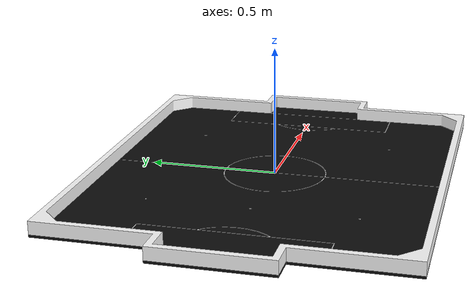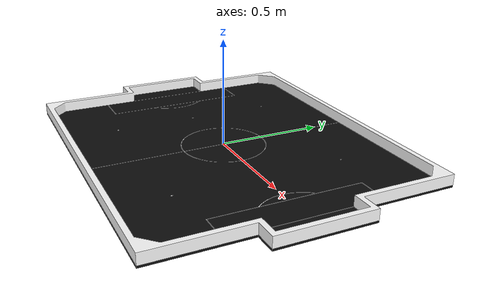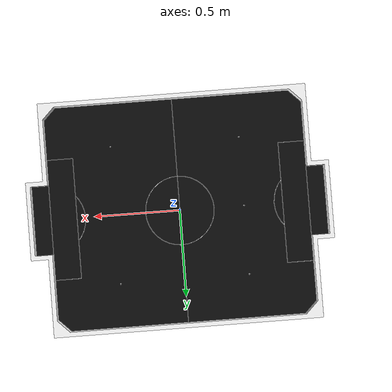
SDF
<?xml version="1.0" ?>

<!-- To generate a sdf file from urdf, run the command
    gz sdf -p /model.urdf > /model.sdf -->

<!-- Physical parameters (contact properties) taken from
https://bitbucket.org/osrf/gazebo/src/gazebo11/models/ground_plane/model.sdf -->

<sdf version="1.5">
  <model name='vss_field'>

    <static>true</static>

    <link name='base_link'>
      <pose frame=''>0 0 0 0 0 0</pose>

      <inertial>
        <pose frame=''>0 0 0.01 0 0 0</pose>
        <mass>4.8995</mass>
        <inertia>
          <ixx>0.541513</ixx>
          <ixy>5.91216e-07</ixy>
          <ixz>-5.64316e-09</ixz>
          <iyy>0.271333</iyy>
          <iyz>1.16883e-08</iyz>
          <izz>0.81109</izz>
        </inertia>
      </inertial>

      <collision name='base_link_collision'>
        <pose>0 0 -0.005 0 0 0</pose>
        <geometry>
          <box>
            <size>1.75 1.35 0.01</size>
          </box>
        </geometry>
        <surface>
          <friction>
            <ode>
              <mu>0.6</mu>
              <mu2>0.6</mu2>
            </ode>
            <torsional>
              <ode/>
            </torsional>
          </friction>
          <bounce/>
        </surface>
        <max_contacts>20</max_contacts>
      </collision>
      <collision name='laterais_link_collision'>
        <pose frame=''>0 0 0 0 0 0</pose>
        <geometry>
          <mesh>
            <scale>1 1 1</scale>
            <uri>model://vss_field/meshes/laterais_link.stl</uri>
          </mesh>
        </geometry>
      </collision>

      <visual name='base_link_visual'>
        <pose frame=''>0 0 0 0 0 0</pose>
        <geometry>
          <mesh>
            <scale>1 1 1</scale>
            <uri>model://vss_field/meshes/base_link.stl</uri>
          </mesh>
        </geometry>
        <material>
          <ambient>.05 .05 .05 1</ambient>
          <diffuse>.05 .05 .05 1</diffuse>
          <specular>.1 .1 .1 1</specular>
        </material>
      </visual>

      <visual name='marcas_campo_visual'>
        <pose frame=''>0 0 0.0001 0 0 0</pose>
        <geometry>
          <mesh>
            <scale>1 1 1</scale>
            <uri>model://vss_field/meshes/marcas_campo.stl</uri>
          </mesh>
        </geometry>
        <material>
          <ambient>1 1 1 1</ambient>
          <diffuse>1 1 1 1</diffuse>
          <specular>.1 .1 .1 1</specular>
        </material>
      </visual>

      <visual name='laterais_link_visual'>
        <pose frame=''>0 0 0 0 0 0</pose>
        <geometry>
          <mesh>
            <scale>1 1 1</scale>
            <uri>model://vss_field/meshes/laterais_link.stl</uri>
          </mesh>
        </geometry>
        <material>
          <ambient>1 1 1 1</ambient>
          <diffuse>1 1 1 1</diffuse>
          <specular>.1 .1 .1 1</specular>
        </material>
      </visual>

    </link>

  </model>
</sdf>
